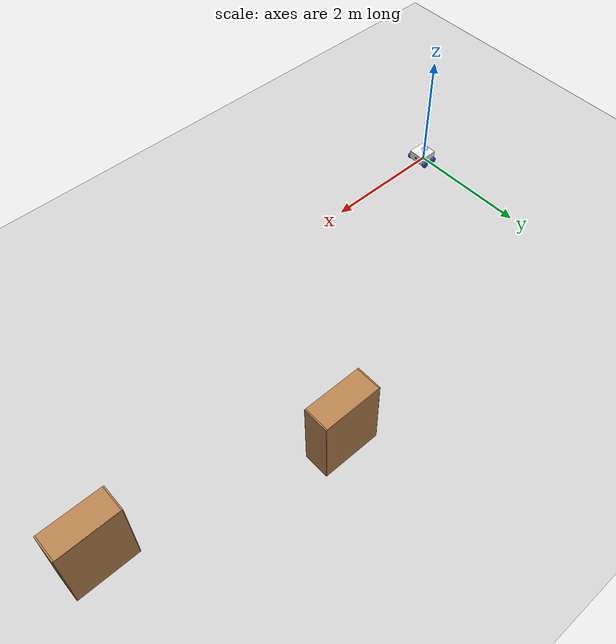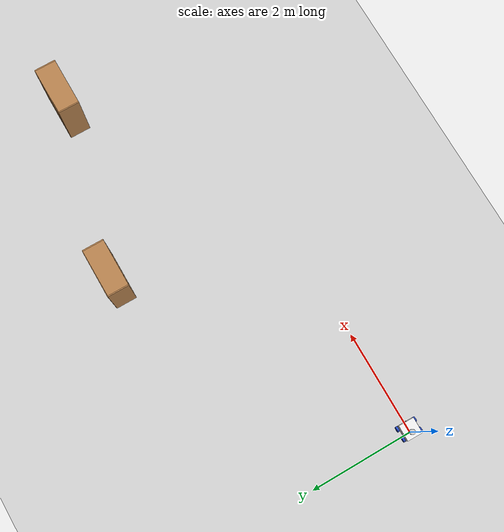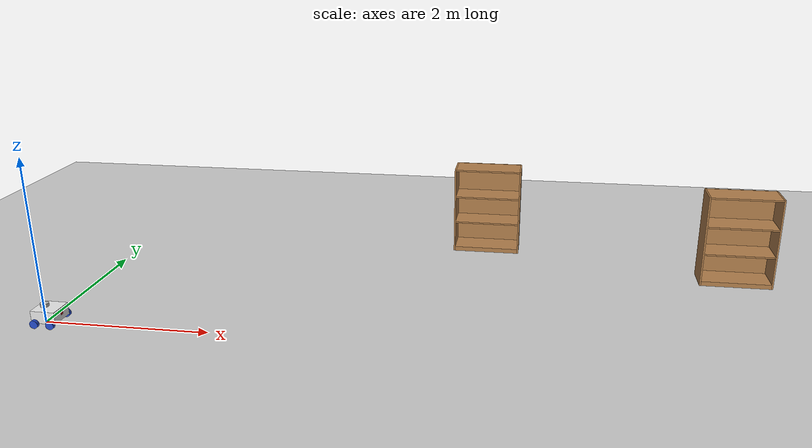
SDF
<sdf version="1.7">
 <world name="default">
  <light name="sun" type="directional">
   <pose>0 0 10 0 -0 0</pose>
   <diffuse>0.8 0.8 0.8 1</diffuse>
   <specular>0.2 0.2 0.2 1</specular>
   <attenuation>
    <range>1000</range>
    <constant>0.9</constant>
    <linear>0.01</linear>
    <quadratic>0.001</quadratic>
   </attenuation>
   <direction>-0.5 0.1 -0.9</direction>
   <spot><inner_angle>0</inner_angle><outer_angle>0</outer_angle><falloff>0</falloff></spot>
  </light>
  <model name="ground_plane">
   <static>1</static>
   <link name="link">
    <collision name="collision">
     <geometry><plane><normal>0 0 1</normal><size>100 100</size></plane></geometry>
     <surface>
      <contact><collide_bitmask>65535</collide_bitmask></contact>
      <friction><ode><mu>100</mu><mu2>50</mu2></ode></friction>
     </surface>
    </collision>
    <visual name="visual">
     <cast_shadows>0</cast_shadows>
     <geometry><plane><normal>0 0 1</normal><size>100 100</size></plane></geometry>
     <material>
      <script><uri>file://media/materials/scripts/gazebo.material</uri><name>Gazebo/Grey</name></script>
     </material>
    </visual>
   </link>
  </model>
  <gravity>0 0 -9.8</gravity>
  <magnetic_field>6e-06 2.3e-05 -4.2e-05</magnetic_field>
  <atmosphere type="adiabatic"/>
  <physics type="ode">
   <max_step_size>0.001</max_step_size>
   <real_time_factor>1</real_time_factor>
   <real_time_update_rate>1000</real_time_update_rate>
  </physics>
  <scene><ambient>0.4 0.4 0.4 1</ambient><background>0.7 0.7 0.7 1</background><shadows>1</shadows></scene>
  <audio><device>default</device></audio>
  <spherical_coordinates>
   <surface_model>EARTH_WGS84</surface_model>
   <latitude_deg>0</latitude_deg>
   <longitude_deg>0</longitude_deg>
   <elevation>0</elevation>
   <heading_deg>0</heading_deg>
  </spherical_coordinates>
  <model name="my_bot">
   <link name="base_link">
    <inertial>
     <pose>0.06875 0 0.06875 0 -0 0</pose>
     <mass>0.8</mass>
     <inertia>
      <ixx>0.0131337</ixx>
      <ixy>0</ixy>
      <ixz>0.00190625</ixz>
      <iyy>0.00907583</iyy>
      <iyz>-1.39278e-20</iyz>
      <izz>0.0158704</izz>
     </inertia>
    </inertial>
    <collision name="base_link_fixed_joint_lump__chassis_collision">
     <pose>0.05 0 0.075 0 -0 0</pose>
     <geometry><box><size>0.3 0.3 0.15</size></box></geometry>
    </collision>
    <collision name="base_link_fixed_joint_lump__lidar_collision_1">
     <pose>0 0 0.175 0 -0 0</pose>
     <geometry><cylinder><length>0.04</length><radius>0.05</radius></cylinder></geometry>
    </collision>
    <collision name="base_link_fixed_joint_lump__left_front_wheel_collision_2">
     <pose>0.15 0.175 0 -1.5708 0 0</pose>
     <geometry><cylinder><length>0.04</length><radius>0.05</radius></cylinder></geometry>
     <surface><friction><ode><mu>0.001</mu><mu2>0.001</mu2></ode></friction></surface>
    </collision>
    <collision name="base_link_fixed_joint_lump__right_front_wheel_collision_3">
     <pose>0.15 -0.175 0 1.5708 -0 0</pose>
     <geometry><cylinder><length>0.04</length><radius>0.05</radius></cylinder></geometry>
     <surface><friction><ode><mu>0.001</mu><mu2>0.001</mu2></ode></friction></surface>
    </collision>
    <visual name="base_link_fixed_joint_lump__chassis_visual">
     <pose>0.05 0 0.075 0 -0 0</pose>
     <geometry><box><size>0.3 0.3 0.15</size></box></geometry>
     <material>
      <script><name>Gazebo/White</name><uri>file://media/materials/scripts/gazebo.material</uri></script>
     </material>
    </visual>
    <visual name="base_link_fixed_joint_lump__camera_visual_1">
     <pose>0.205 0 0.08 0 -0 0</pose>
     <geometry><box><size>0.01 0.03 0.03</size></box></geometry>
     <material>
      <script><name>Gazebo/Red</name><uri>file://media/materials/scripts/gazebo.material</uri></script>
     </material>
    </visual>
    <visual name="base_link_fixed_joint_lump__lidar_visual_2">
     <pose>0 0 0.175 0 -0 0</pose>
     <geometry><cylinder><length>0.04</length><radius>0.05</radius></cylinder></geometry>
    </visual>
    <visual name="base_link_fixed_joint_lump__left_front_wheel_visual_3">
     <pose>0.15 0.175 0 -1.5708 0 0</pose>
     <geometry><cylinder><length>0.04</length><radius>0.05</radius></cylinder></geometry>
     <material>
      <script><name>Gazebo/Blue</name><uri>file://media/materials/scripts/gazebo.material</uri></script>
     </material>
    </visual>
    <visual name="base_link_fixed_joint_lump__right_front_wheel_visual_4">
     <pose>0.15 -0.175 0 1.5708 -0 0</pose>
     <geometry><cylinder><length>0.04</length><radius>0.05</radius></cylinder></geometry>
     <material>
      <script><name>Gazebo/Blue</name><uri>file://media/materials/scripts/gazebo.material</uri></script>
     </material>
    </visual>
    <sensor name="camera" type="camera">
     <visualize>1</visualize>
     <update_rate>10</update_rate>
     <camera>
      <horizontal_fov>1.089</horizontal_fov>
      <image><format>RRGGBB</format><width>640</width><height>480</height></image>
      <clip><near>0.05</near><far>8</far></clip>
     </camera>
     <plugin name="camera_controla" filename="libgazebo_ros_camera.so">
      <frame_name>camera_optical_link</frame_name>
     </plugin>
     <pose>0.205 0 0.08 0 -0 0</pose>
    </sensor>
    <sensor name="laser" type="ray">
     <visualize>0</visualize>
     <update_rate>10</update_rate>
     <ray>
      <scan>
       <horizontal>
        <resolution>1</resolution>
        <min_angle>-3.14</min_angle>
        <max_angle>3.14</max_angle>
        <samples>640</samples>
        <sample>360</sample>
       </horizontal>
       <vertical><samples>1</samples><min_angle>0</min_angle><max_angle>0</max_angle></vertical>
      </scan>
      <range><min>0.3</min><max>12</max><resolution>0.01</resolution></range>
     </ray>
     <plugin name="laser_controla" filename="libgazebo_ros_ray_sensor.so">
      <ros><argument>~/out:=scan</argument></ros>
      <output_type>sensor_msgs/LaserScan</output_type>
      <frame_name>lidar</frame_name>
     </plugin>
     <pose>0 0 0.175 0 -0 0</pose>
    </sensor>
   </link>
   <joint name="left_back_wheel_joint" type="revolute">
    <pose relative_to="base_link">-0.05 0.175 0 -1.5708 0 0</pose>
    <parent>base_link</parent>
    <child>left_back_wheel</child>
    <axis>
     <xyz>0 0 1</xyz>
     <limit><lower>-1e+16</lower><upper>1e+16</upper></limit>
     <dynamics><spring_reference>0</spring_reference><spring_stiffness>0</spring_stiffness></dynamics>
    </axis>
   </joint>
   <link name="left_back_wheel">
    <pose relative_to="left_back_wheel_joint">0 0 0 0 -0 0</pose>
    <inertial>
     <mass>0.1</mass>
     <inertia>
      <ixx>7.58333e-05</ixx>
      <ixy>0</ixy>
      <ixz>0</ixz>
      <iyy>7.58333e-05</iyy>
      <iyz>0</iyz>
      <izz>0.000125</izz>
     </inertia>
    </inertial>
    <collision name="left_back_wheel_collision">
     <geometry><cylinder><length>0.04</length><radius>0.05</radius></cylinder></geometry>
    </collision>
    <visual name="left_back_wheel_visual">
     <geometry><cylinder><length>0.04</length><radius>0.05</radius></cylinder></geometry>
     <material>
      <script><name>Gazebo/Blue</name><uri>file://media/materials/scripts/gazebo.material</uri></script>
     </material>
    </visual>
   </link>
   <joint name="right_back_wheel_joint" type="revolute">
    <pose relative_to="base_link">-0.05 -0.175 0 1.5708 -0 0</pose>
    <parent>base_link</parent>
    <child>right_back_wheel</child>
    <axis>
     <xyz>0 0 -1</xyz>
     <limit><lower>-1e+16</lower><upper>1e+16</upper></limit>
     <dynamics><spring_reference>0</spring_reference><spring_stiffness>0</spring_stiffness></dynamics>
    </axis>
   </joint>
   <link name="right_back_wheel">
    <pose relative_to="right_back_wheel_joint">0 0 0 0 -0 0</pose>
    <inertial>
     <mass>0.1</mass>
     <inertia>
      <ixx>7.58333e-05</ixx>
      <ixy>0</ixy>
      <ixz>0</ixz>
      <iyy>7.58333e-05</iyy>
      <iyz>0</iyz>
      <izz>0.000125</izz>
     </inertia>
    </inertial>
    <collision name="right_back_wheel_collision">
     <geometry><cylinder><length>0.04</length><radius>0.05</radius></cylinder></geometry>
    </collision>
    <visual name="right_back_wheel_visual">
     <geometry><cylinder><length>0.04</length><radius>0.05</radius></cylinder></geometry>
     <material>
      <script><name>Gazebo/Blue</name><uri>file://media/materials/scripts/gazebo.material</uri></script>
     </material>
    </visual>
   </link>
   <static>0</static>
   <plugin name="gazebo_ros2_control" filename="libgazebo_ros2_control.so">
    <parameters>/home/aryan/ros2_ws/install/osiris_ros/share/osiris_ros/config/my_controllers.yaml</parameters>
   </plugin>
   <pose>0.011272 0.000953 0.05 1e-06 -1e-06 -0.01124</pose>
  </model>
  <model name="bookshelf">
   <static>1</static>
   <link name="link">
    <inertial><mass>1</mass></inertial>
    <collision name="back">
     <pose>0 0.005 0.6 0 -0 0</pose>
     <geometry><box><size>0.9 0.01 1.2</size></box></geometry>
    </collision>
    <visual name="visual1">
     <pose>0 0.005 0.6 0 -0 0</pose>
     <geometry><box><size>0.9 0.01 1.2</size></box></geometry>
     <material>
      <script><uri>file://media/materials/scripts/gazebo.material</uri><name>Gazebo/Wood</name></script>
     </material>
    </visual>
    <collision name="left_side">
     <pose>0.45 -0.195 0.6 0 -0 0</pose>
     <geometry><box><size>0.02 0.4 1.2</size></box></geometry>
    </collision>
    <visual name="visual2">
     <pose>0.45 -0.195 0.6 0 -0 0</pose>
     <geometry><box><size>0.02 0.4 1.2</size></box></geometry>
     <material>
      <script><uri>file://media/materials/scripts/gazebo.material</uri><name>Gazebo/Wood</name></script>
     </material>
    </visual>
    <collision name="right_side">
     <pose>-0.45 -0.195 0.6 0 -0 0</pose>
     <geometry><box><size>0.02 0.4 1.2</size></box></geometry>
    </collision>
    <visual name="visual3">
     <pose>-0.45 -0.195 0.6 0 -0 0</pose>
     <geometry><box><size>0.02 0.4 1.2</size></box></geometry>
     <material>
      <script><uri>file://media/materials/scripts/gazebo.material</uri><name>Gazebo/Wood</name></script>
     </material>
    </visual>
    <collision name="bottom">
     <pose>0 -0.195 0.03 0 -0 0</pose>
     <geometry><box><size>0.88 0.4 0.06</size></box></geometry>
    </collision>
    <visual name="visual4">
     <pose>0 -0.195 0.03 0 -0 0</pose>
     <geometry><box><size>0.88 0.4 0.06</size></box></geometry>
     <material>
      <script><uri>file://media/materials/scripts/gazebo.material</uri><name>Gazebo/Wood</name></script>
     </material>
    </visual>
    <collision name="top">
     <pose>0 -0.195 1.19 0 -0 0</pose>
     <geometry><box><size>0.88 0.4 0.02</size></box></geometry>
    </collision>
    <visual name="visual5">
     <pose>0 -0.195 1.19 0 -0 0</pose>
     <geometry><box><size>0.88 0.4 0.02</size></box></geometry>
     <material>
      <script><uri>file://media/materials/scripts/gazebo.material</uri><name>Gazebo/Wood</name></script>
     </material>
    </visual>
    <collision name="low_shelf">
     <pose>0 -0.195 0.43 0 -0 0</pose>
     <geometry><box><size>0.88 0.4 0.02</size></box></geometry>
    </collision>
    <visual name="visual6">
     <pose>0 -0.195 0.43 0 -0 0</pose>
     <geometry><box><size>0.88 0.4 0.02</size></box></geometry>
     <material>
      <script><uri>file://media/materials/scripts/gazebo.material</uri><name>Gazebo/Wood</name></script>
     </material>
    </visual>
    <collision name="high_shelf">
     <pose>0 -0.195 0.8 0 -0 0</pose>
     <geometry><box><size>0.88 0.4 0.02</size></box></geometry>
    </collision>
    <visual name="visual7">
     <pose>0 -0.195 0.8 0 -0 0</pose>
     <geometry><box><size>0.88 0.4 0.02</size></box></geometry>
     <material>
      <script><uri>file://media/materials/scripts/gazebo.material</uri><name>Gazebo/Wood</name></script>
     </material>
    </visual>
   </link>
   <pose>4.97522 3.4116 0 0 -0 0</pose>
  </model>
  <model name="bookshelf_0">
   <static>1</static>
   <link name="link">
    <inertial><mass>1</mass></inertial>
    <collision name="back">
     <pose>0 0.005 0.6 0 -0 0</pose>
     <geometry><box><size>0.9 0.01 1.2</size></box></geometry>
    </collision>
    <visual name="visual1">
     <pose>0 0.005 0.6 0 -0 0</pose>
     <geometry><box><size>0.9 0.01 1.2</size></box></geometry>
     <material>
      <script><uri>file://media/materials/scripts/gazebo.material</uri><name>Gazebo/Wood</name></script>
     </material>
    </visual>
    <collision name="left_side">
     <pose>0.45 -0.195 0.6 0 -0 0</pose>
     <geometry><box><size>0.02 0.4 1.2</size></box></geometry>
    </collision>
    <visual name="visual2">
     <pose>0.45 -0.195 0.6 0 -0 0</pose>
     <geometry><box><size>0.02 0.4 1.2</size></box></geometry>
     <material>
      <script><uri>file://media/materials/scripts/gazebo.material</uri><name>Gazebo/Wood</name></script>
     </material>
    </visual>
    <collision name="right_side">
     <pose>-0.45 -0.195 0.6 0 -0 0</pose>
     <geometry><box><size>0.02 0.4 1.2</size></box></geometry>
    </collision>
    <visual name="visual3">
     <pose>-0.45 -0.195 0.6 0 -0 0</pose>
     <geometry><box><size>0.02 0.4 1.2</size></box></geometry>
     <material>
      <script><uri>file://media/materials/scripts/gazebo.material</uri><name>Gazebo/Wood</name></script>
     </material>
    </visual>
    <collision name="bottom">
     <pose>0 -0.195 0.03 0 -0 0</pose>
     <geometry><box><size>0.88 0.4 0.06</size></box></geometry>
    </collision>
    <visual name="visual4">
     <pose>0 -0.195 0.03 0 -0 0</pose>
     <geometry><box><size>0.88 0.4 0.06</size></box></geometry>
     <material>
      <script><uri>file://media/materials/scripts/gazebo.material</uri><name>Gazebo/Wood</name></script>
     </material>
    </visual>
    <collision name="top">
     <pose>0 -0.195 1.19 0 -0 0</pose>
     <geometry><box><size>0.88 0.4 0.02</size></box></geometry>
    </collision>
    <visual name="visual5">
     <pose>0 -0.195 1.19 0 -0 0</pose>
     <geometry><box><size>0.88 0.4 0.02</size></box></geometry>
     <material>
      <script><uri>file://media/materials/scripts/gazebo.material</uri><name>Gazebo/Wood</name></script>
     </material>
    </visual>
    <collision name="low_shelf">
     <pose>0 -0.195 0.43 0 -0 0</pose>
     <geometry><box><size>0.88 0.4 0.02</size></box></geometry>
    </collision>
    <visual name="visual6">
     <pose>0 -0.195 0.43 0 -0 0</pose>
     <geometry><box><size>0.88 0.4 0.02</size></box></geometry>
     <material>
      <script><uri>file://media/materials/scripts/gazebo.material</uri><name>Gazebo/Wood</name></script>
     </material>
    </visual>
    <collision name="high_shelf">
     <pose>0 -0.195 0.8 0 -0 0</pose>
     <geometry><box><size>0.88 0.4 0.02</size></box></geometry>
    </collision>
    <visual name="visual7">
     <pose>0 -0.195 0.8 0 -0 0</pose>
     <geometry><box><size>0.88 0.4 0.02</size></box></geometry>
     <material>
      <script><uri>file://media/materials/scripts/gazebo.material</uri><name>Gazebo/Wood</name></script>
     </material>
    </visual>
   </link>
   <pose>8.27505 2.61016 0 0 -0 0</pose>
  </model>
 </world>
</sdf>
